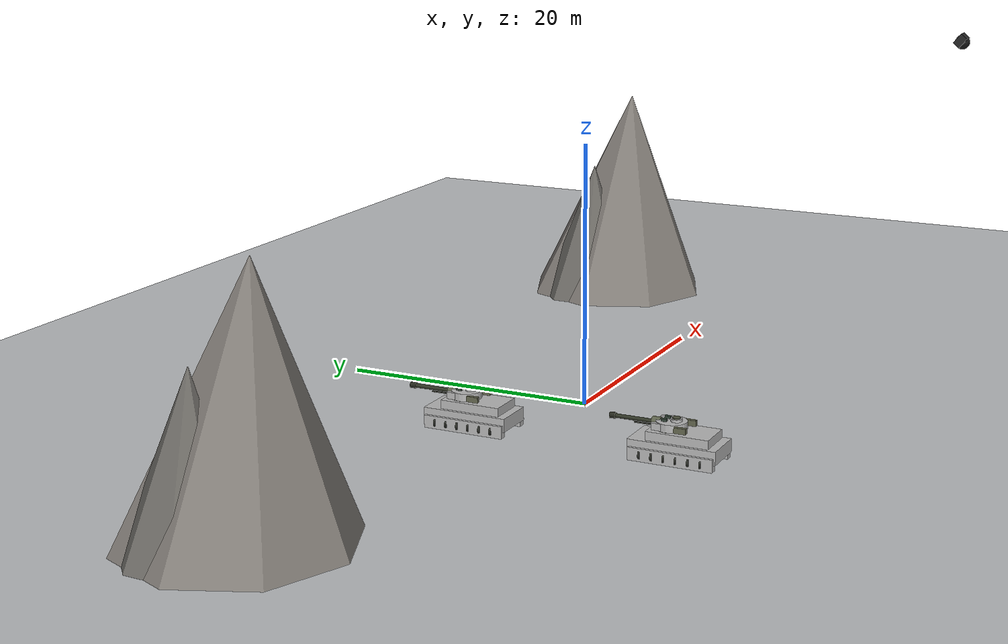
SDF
<?xml version="1.0"?>
<sdf version="1.6">
  <world name="tracking_benchmark">
    <physics name="ode" type="ode">
      <max_step_size>0.008</max_step_size>
      <real_time_factor>1.0</real_time_factor>
      <real_time_update_rate>125</real_time_update_rate>
    </physics>
    <scene>
      <ambient>0.50 0.50 0.51 1</ambient>
      <background>0.50 0.59 0.67 1</background>
      <shadows>false</shadows>
    </scene>
    <light name="sun" type="directional">
      <pose>0 0 100 0 0 0</pose>
      <diffuse>0.94 0.94 0.92 1</diffuse>
      <specular>0.18 0.18 0.18 1</specular>
      <direction>-0.35 0.15 -0.92</direction>
      <cast_shadows>false</cast_shadows>
    </light>

    <model name="benchmark_ground">
      <static>true</static>
      <link name="ground_link">
        <collision name="collision"><geometry><plane><normal>0 0 1</normal><size>100 100</size></plane></geometry></collision>
        <!-- Neutral light concrete keeps the tank silhouettes and markings distinct. -->
        <visual name="ground"><geometry><plane><normal>0 0 1</normal><size>100 100</size></plane></geometry><material><ambient>0.49 0.50 0.51 1</ambient><diffuse>0.73 0.74 0.75 1</diffuse></material></visual>
      </link>
    </model>

    <!-- Two large, pointed, low-poly rock hills sit outside the tank lanes. -->
    <include><uri>model://tracking_mountain</uri><name>benchmark_mountain_west</name><pose>-34 8 0 0 0 0</pose></include>
    <include><uri>model://tracking_mountain</uri><name>benchmark_mountain_east</name><pose>34 12 0 0 0 0</pose></include>

    <include><uri>model://tracking_tank</uri><name>benchmark_tank_alpha</name><pose>-8.5 -11 0 0 0 1.57079632679</pose></include>
    <include><uri>model://tracking_tank</uri><name>benchmark_tank_bravo</name><pose>-8.5 5 0 0 0 1.57079632679</pose></include>

    <!--
      South fixed camera: a deliberately wide-area search camera.  The higher
      mounting point sees the target route without raising image resolution.
    -->
    <model name="benchmark_fixed_camera">
      <static>true</static>
      <pose>0 -27 29 0 0.872664626 1.57079632679</pose>
      <link name="fixed_camera_link">
        <visual name="body"><geometry><box><size>0.8 0.8 0.5</size></box></geometry><material><ambient>0.08 0.08 0.08 1</ambient><diffuse>0.16 0.16 0.16 1</diffuse></material></visual>
        <sensor name="fixed_camera_sensor" type="camera">
          <always_on>true</always_on><update_rate>6</update_rate><visualize>false</visualize>
          <camera><horizontal_fov>1.40</horizontal_fov><image><width>640</width><height>480</height><format>R8G8B8</format></image><clip><near>0.1</near><far>120</far></clip></camera>
          <plugin name="benchmark_fixed_camera_ros" filename="libgazebo_ros_camera.so">
            <robotNamespace>/tracking_benchmark</robotNamespace><cameraName>fixed_camera</cameraName><imageTopicName>image_raw</imageTopicName><cameraInfoTopicName>camera_info</cameraInfoTopicName><frameName>tracking_benchmark/fixed_camera_optical_frame</frameName><updateRate>6</updateRate>
          </plugin>
        </sensor>
      </link>
    </model>

    <!-- Retain the co-mounted gimbal housing as a scene prop; its camera sensor
         and ROS plugin are intentionally suspended in fixed-camera-only mode. -->
    <model name="benchmark_gimbal_camera">
      <static>true</static>
      <pose>0.35 -27 28.85 0 0.67474094222 3.14159265359</pose>
      <link name="gimbal_camera_link">
        <visual name="body"><geometry><sphere><radius>0.48</radius></sphere></geometry><material><ambient>0.05 0.05 0.05 1</ambient><diffuse>0.10 0.10 0.10 1</diffuse></material></visual>
      </link>
    </model>

    <gui fullscreen="0">
      <camera name="benchmark_overview">
        <pose>0 -64 64 0 0.78539816339 1.57079632679</pose>
        <view_controller>orbit</view_controller>
      </camera>
    </gui>
  </world>
</sdf>

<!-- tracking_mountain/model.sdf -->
<sdf version="1.6">
  <model name="tracking_mountain">
    <static>true</static>
    <link name="rock">
      <!-- Collision is deliberately cheap; the two tank lanes never touch it. -->
      <collision name="base_collision">
        <pose>0 0 1.5 0 0 0</pose>
        <geometry><cylinder><radius>8.0</radius><length>3.0</length></cylinder></geometry>
      </collision>
      <visual name="main_peak">
        <geometry><mesh><uri>model://tracking_mountain/meshes/pointed_rock.stl</uri></mesh></geometry>
        <material><ambient>0.28 0.27 0.26 1</ambient><diffuse>0.51 0.49 0.47 1</diffuse><specular>0.05 0.05 0.05 1</specular></material>
      </visual>
      <visual name="side_peak">
        <pose>-3.4 1.4 0 0 0 0.35</pose>
        <geometry><mesh><uri>model://tracking_mountain/meshes/pointed_rock.stl</uri><scale>0.53 0.53 0.66</scale></mesh></geometry>
        <material><ambient>0.24 0.23 0.22 1</ambient><diffuse>0.43 0.42 0.40 1</diffuse><specular>0.04 0.04 0.04 1</specular></material>
      </visual>
    </link>
  </model>
</sdf>

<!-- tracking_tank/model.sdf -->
<sdf version="1.6">
  <!-- Deliberately primitive-only: low GPU load, no unverified external mesh licence. -->
  <model name="tracking_tank">
    <static>false</static>
    <allow_auto_disable>false</allow_auto_disable>
    <link name="base_link">
      <gravity>false</gravity>
      <self_collide>false</self_collide>
      <kinematic>false</kinematic>
      <inertial>
        <mass>1800.0</mass>
        <inertia><ixx>900</ixx><iyy>1400</iyy><izz>1700</izz></inertia>
      </inertial>
      <visual name="left_track">
        <pose>0 1.55 0.62 0 0 0</pose>
        <geometry><box><size>6.25 0.54 0.94</size></box></geometry>
        <material><script><uri>model://tracking_tank/materials/scripts</uri><uri>model://tracking_tank/materials/textures</uri><name>XdUavTrack/TrackRubber</name></script></material>
      </visual>
      <visual name="right_track">
        <pose>0 -1.55 0.62 0 0 0</pose>
        <geometry><box><size>6.25 0.54 0.94</size></box></geometry>
        <material><script><uri>model://tracking_tank/materials/scripts</uri><uri>model://tracking_tank/materials/textures</uri><name>XdUavTrack/TrackRubber</name></script></material>
      </visual>
      <!-- Six road wheels on each track add a recognizable lower silhouette. -->
      <visual name="road_wheel_left_1"><pose>-2.25 1.62 0.60 0 1.57079632679 0</pose><geometry><cylinder><radius>0.34</radius><length>0.12</length></cylinder></geometry><material><ambient>0.13 0.14 0.12 1</ambient><diffuse>0.22 0.23 0.20 1</diffuse></material></visual>
      <visual name="road_wheel_left_2"><pose>-1.35 1.62 0.60 0 1.57079632679 0</pose><geometry><cylinder><radius>0.34</radius><length>0.12</length></cylinder></geometry><material><ambient>0.13 0.14 0.12 1</ambient><diffuse>0.22 0.23 0.20 1</diffuse></material></visual>
      <visual name="road_wheel_left_3"><pose>-0.45 1.62 0.60 0 1.57079632679 0</pose><geometry><cylinder><radius>0.34</radius><length>0.12</length></cylinder></geometry><material><ambient>0.13 0.14 0.12 1</ambient><diffuse>0.22 0.23 0.20 1</diffuse></material></visual>
      <visual name="road_wheel_left_4"><pose>0.45 1.62 0.60 0 1.57079632679 0</pose><geometry><cylinder><radius>0.34</radius><length>0.12</length></cylinder></geometry><material><ambient>0.13 0.14 0.12 1</ambient><diffuse>0.22 0.23 0.20 1</diffuse></material></visual>
      <visual name="road_wheel_left_5"><pose>1.35 1.62 0.60 0 1.57079632679 0</pose><geometry><cylinder><radius>0.34</radius><length>0.12</length></cylinder></geometry><material><ambient>0.13 0.14 0.12 1</ambient><diffuse>0.22 0.23 0.20 1</diffuse></material></visual>
      <visual name="road_wheel_left_6"><pose>2.25 1.62 0.60 0 1.57079632679 0</pose><geometry><cylinder><radius>0.34</radius><length>0.12</length></cylinder></geometry><material><ambient>0.13 0.14 0.12 1</ambient><diffuse>0.22 0.23 0.20 1</diffuse></material></visual>
      <visual name="road_wheel_right_1"><pose>-2.25 -1.62 0.60 0 1.57079632679 0</pose><geometry><cylinder><radius>0.34</radius><length>0.12</length></cylinder></geometry><material><ambient>0.13 0.14 0.12 1</ambient><diffuse>0.22 0.23 0.20 1</diffuse></material></visual>
      <visual name="road_wheel_right_2"><pose>-1.35 -1.62 0.60 0 1.57079632679 0</pose><geometry><cylinder><radius>0.34</radius><length>0.12</length></cylinder></geometry><material><ambient>0.13 0.14 0.12 1</ambient><diffuse>0.22 0.23 0.20 1</diffuse></material></visual>
      <visual name="road_wheel_right_3"><pose>-0.45 -1.62 0.60 0 1.57079632679 0</pose><geometry><cylinder><radius>0.34</radius><length>0.12</length></cylinder></geometry><material><ambient>0.13 0.14 0.12 1</ambient><diffuse>0.22 0.23 0.20 1</diffuse></material></visual>
      <visual name="road_wheel_right_4"><pose>0.45 -1.62 0.60 0 1.57079632679 0</pose><geometry><cylinder><radius>0.34</radius><length>0.12</length></cylinder></geometry><material><ambient>0.13 0.14 0.12 1</ambient><diffuse>0.22 0.23 0.20 1</diffuse></material></visual>
      <visual name="road_wheel_right_5"><pose>1.35 -1.62 0.60 0 1.57079632679 0</pose><geometry><cylinder><radius>0.34</radius><length>0.12</length></cylinder></geometry><material><ambient>0.13 0.14 0.12 1</ambient><diffuse>0.22 0.23 0.20 1</diffuse></material></visual>
      <visual name="road_wheel_right_6"><pose>2.25 -1.62 0.60 0 1.57079632679 0</pose><geometry><cylinder><radius>0.34</radius><length>0.12</length></cylinder></geometry><material><ambient>0.13 0.14 0.12 1</ambient><diffuse>0.22 0.23 0.20 1</diffuse></material></visual>
      <visual name="hull">
        <pose>0 0 1.10 0 0 0</pose>
        <geometry><box><size>6.50 3.20 1.00</size></box></geometry>
        <material><script><uri>model://tracking_tank/materials/scripts</uri><uri>model://tracking_tank/materials/textures</uri><name>XdUavTrack/BenchmarkCamo</name></script></material>
      </visual>
      <visual name="upper_hull">
        <pose>-0.32 0 1.88 0 0 0</pose>
        <geometry><box><size>4.62 2.72 0.74</size></box></geometry>
        <material><script><uri>model://tracking_tank/materials/scripts</uri><uri>model://tracking_tank/materials/textures</uri><name>XdUavTrack/BenchmarkCamo</name></script></material>
      </visual>
      <visual name="turret_ring">
        <pose>0.58 0 2.25 0 0 0</pose>
        <geometry><cylinder><radius>1.10</radius><length>0.18</length></cylinder></geometry>
        <material><ambient>0.18 0.20 0.15 1</ambient><diffuse>0.30 0.32 0.24 1</diffuse></material>
      </visual>
      <visual name="turret">
        <pose>0.58 0 2.55 0 0 0</pose>
        <geometry><cylinder><radius>1.12</radius><length>0.56</length></cylinder></geometry>
        <material><script><uri>model://tracking_tank/materials/scripts</uri><uri>model://tracking_tank/materials/textures</uri><name>XdUavTrack/BenchmarkCamo</name></script></material>
      </visual>
      <visual name="turret_left_cheek">
        <pose>1.10 0.88 2.55 0 0 0</pose>
        <geometry><box><size>1.18 0.30 0.50</size></box></geometry>
        <material><script><uri>model://tracking_tank/materials/scripts</uri><uri>model://tracking_tank/materials/textures</uri><name>XdUavTrack/BenchmarkCamo</name></script></material>
      </visual>
      <visual name="turret_right_cheek">
        <pose>1.10 -0.88 2.55 0 0 0</pose>
        <geometry><box><size>1.18 0.30 0.50</size></box></geometry>
        <material><script><uri>model://tracking_tank/materials/scripts</uri><uri>model://tracking_tank/materials/textures</uri><name>XdUavTrack/BenchmarkCamo</name></script></material>
      </visual>
      <visual name="gun_mantlet">
        <pose>1.67 0 2.57 0 1.57079632679 0</pose>
        <geometry><cylinder><radius>0.38</radius><length>0.62</length></cylinder></geometry>
        <material><ambient>0.22 0.24 0.18 1</ambient><diffuse>0.36 0.38 0.29 1</diffuse></material>
      </visual>
      <visual name="barrel">
        <pose>3.15 0 2.58 0 1.57079632679 0</pose>
        <geometry><cylinder><radius>0.15</radius><length>3.45</length></cylinder></geometry>
        <material><ambient>0.10 0.11 0.08 1</ambient><diffuse>0.19 0.21 0.15 1</diffuse></material>
      </visual>
      <visual name="muzzle_brake">
        <pose>4.98 0 2.58 0 1.57079632679 0</pose>
        <geometry><cylinder><radius>0.22</radius><length>0.42</length></cylinder></geometry>
        <material><ambient>0.08 0.09 0.07 1</ambient><diffuse>0.15 0.16 0.12 1</diffuse></material>
      </visual>
      <visual name="coaxial_barrel">
        <pose>2.45 0.43 2.48 0 1.57079632679 0</pose>
        <geometry><cylinder><radius>0.045</radius><length>1.45</length></cylinder></geometry>
        <material><ambient>0.08 0.09 0.07 1</ambient><diffuse>0.16 0.17 0.13 1</diffuse></material>
      </visual>
      <visual name="commander_cupola">
        <pose>0.22 0 2.92 0 0 0</pose>
        <geometry><cylinder><radius>0.40</radius><length>0.22</length></cylinder></geometry>
        <material><script><uri>model://tracking_tank/materials/scripts</uri><uri>model://tracking_tank/materials/textures</uri><name>XdUavTrack/BenchmarkCamo</name></script></material>
      </visual>
      <visual name="commander_hatch">
        <pose>0.22 0 3.07 0 0 0</pose>
        <geometry><cylinder><radius>0.30</radius><length>0.08</length></cylinder></geometry>
        <material><ambient>0.18 0.20 0.15 1</ambient><diffuse>0.30 0.32 0.24 1</diffuse></material>
      </visual>
      <visual name="sight_left">
        <pose>0.98 0.36 2.91 0 0.10 0</pose>
        <geometry><box><size>0.42 0.24 0.20</size></box></geometry>
        <material><ambient>0.10 0.14 0.12 1</ambient><diffuse>0.20 0.27 0.22 1</diffuse></material>
      </visual>
      <visual name="sight_right">
        <pose>0.98 -0.36 2.91 0 -0.10 0</pose>
        <geometry><box><size>0.42 0.24 0.20</size></box></geometry>
        <material><ambient>0.10 0.14 0.12 1</ambient><diffuse>0.20 0.27 0.22 1</diffuse></material>
      </visual>
      <visual name="turret_stowage_left">
        <pose>-0.45 1.00 2.53 0 0 0</pose>
        <geometry><box><size>0.88 0.28 0.42</size></box></geometry>
        <material><ambient>0.25 0.27 0.20 1</ambient><diffuse>0.39 0.40 0.31 1</diffuse></material>
      </visual>
      <visual name="turret_stowage_right">
        <pose>-0.45 -1.00 2.53 0 0 0</pose>
        <geometry><box><size>0.88 0.28 0.42</size></box></geometry>
        <material><ambient>0.25 0.27 0.20 1</ambient><diffuse>0.39 0.40 0.31 1</diffuse></material>
      </visual>
    </link>
  </model>
</sdf>
